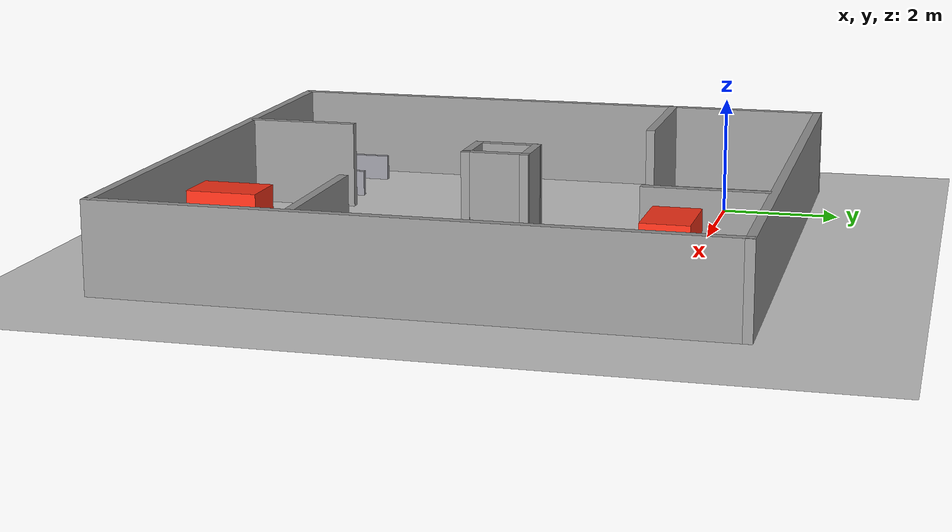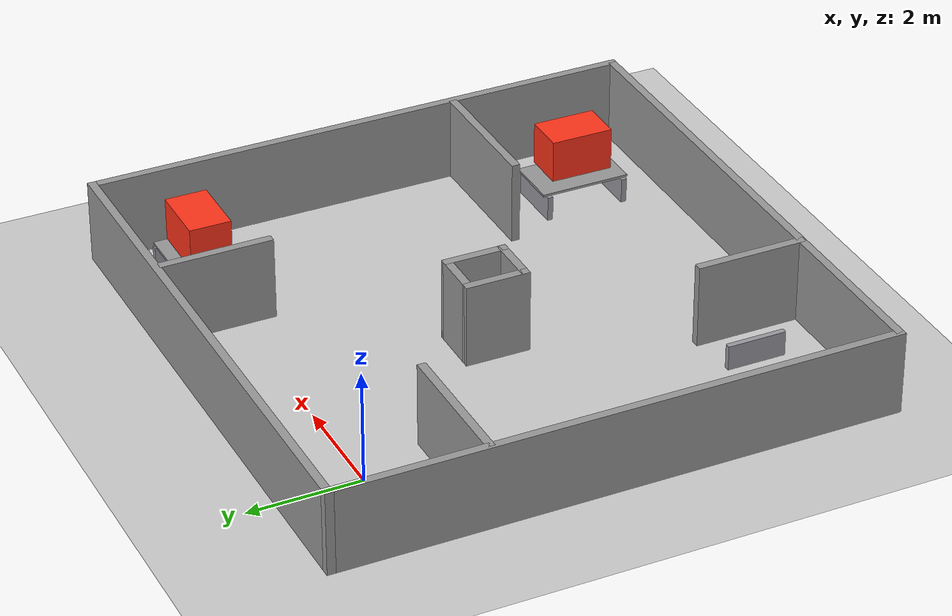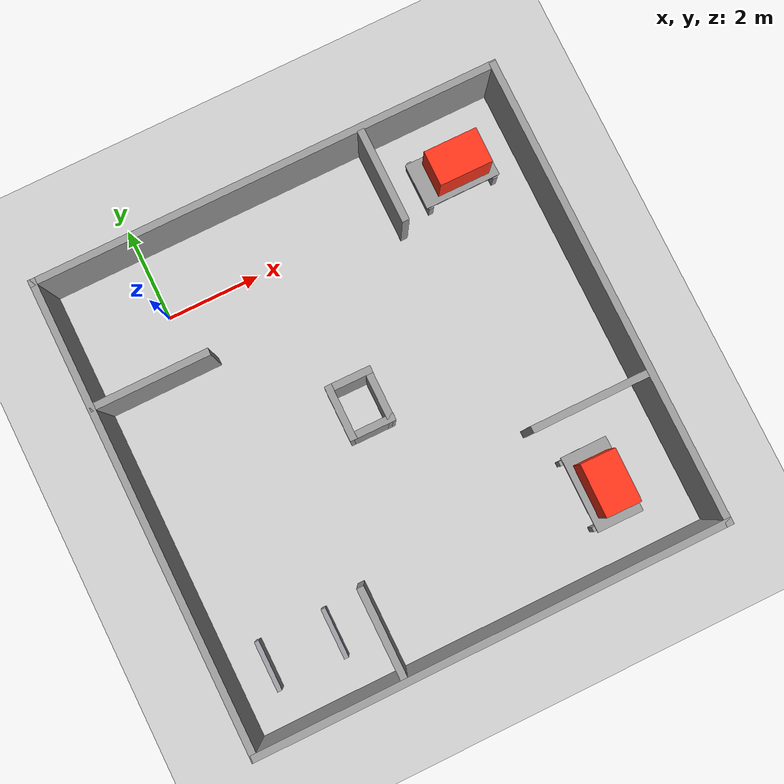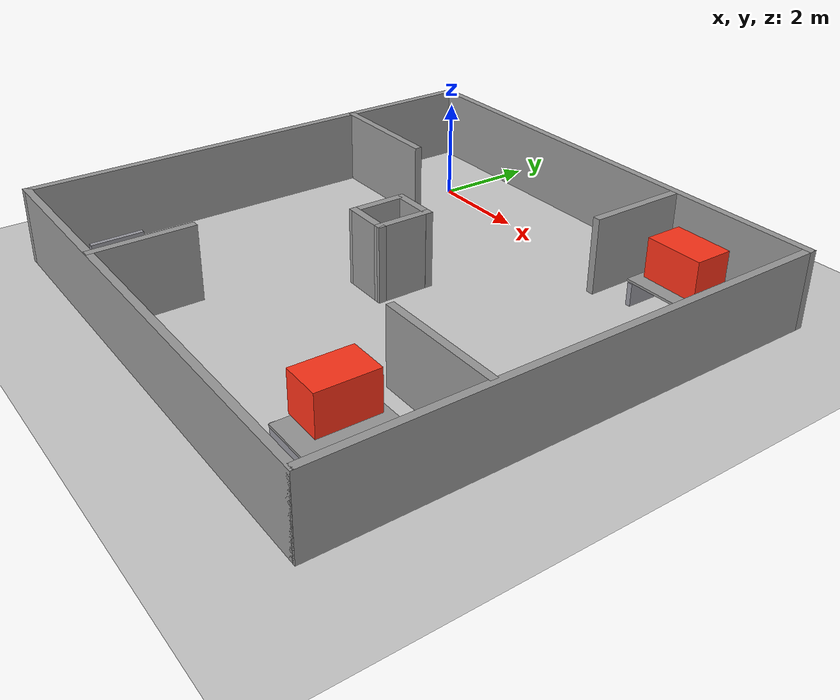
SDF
<sdf version="1.7">
 <world name="default">
  <light name="sun" type="directional">
   <pose>0 0 10 0 -0 0</pose>
   <diffuse>0.8 0.8 0.8 1</diffuse>
   <specular>0.2 0.2 0.2 1</specular>
   <attenuation>
    <range>1000</range>
    <constant>0.9</constant>
    <linear>0.01</linear>
    <quadratic>0.001</quadratic>
   </attenuation>
   <direction>-0.5 0.1 -0.9</direction>
   <spot><inner_angle>0</inner_angle><outer_angle>0</outer_angle><falloff>0</falloff></spot>
  </light>
  <model name="ground_plane">
   <static>1</static>
   <link name="link">
    <collision name="collision">
     <geometry><plane><normal>0 0 1</normal><size>100 100</size></plane></geometry>
     <surface>
      <contact><collide_bitmask>65535</collide_bitmask></contact>
      <friction><ode><mu>100</mu><mu2>50</mu2></ode></friction>
     </surface>
    </collision>
    <visual name="visual">
     <cast_shadows>0</cast_shadows>
     <geometry><plane><normal>0 0 1</normal><size>100 100</size></plane></geometry>
     <material>
      <script><uri>file://media/materials/scripts/gazebo.material</uri><name>Gazebo/Grey</name></script>
     </material>
    </visual>
   </link>
  </model>
  <gravity>0 0 -9.8</gravity>
  <magnetic_field>6e-06 2.3e-05 -4.2e-05</magnetic_field>
  <atmosphere type="adiabatic"/>
  <physics type="ode">
   <max_step_size>0.001</max_step_size>
   <real_time_factor>1</real_time_factor>
   <real_time_update_rate>1000</real_time_update_rate>
  </physics>
  <scene><ambient>0.4 0.4 0.4 1</ambient><background>0.7 0.7 0.7 1</background><shadows>1</shadows></scene>
  <spherical_coordinates>
   <surface_model>EARTH_WGS84</surface_model>
   <latitude_deg>0</latitude_deg>
   <longitude_deg>0</longitude_deg>
   <elevation>0</elevation>
   <heading_deg>0</heading_deg>
  </spherical_coordinates>
  <model name="small_factory">
   <static>1</static>
   <pose>2.99897 -3.51071 0 0 -0 0</pose>
   <link name="Wall_10">
    <collision name="Wall_10_Collision">
     <geometry><box><size>0.959845 0.15 1.5</size></box></geometry>
     <pose>0 0 0.75 0 -0 0</pose>
     <laser_retro>100</laser_retro>
    </collision>
    <visual name="Wall_10_Visual">
     <pose>0 0 0.75 0 -0 0</pose>
     <geometry><box><size>0.959845 0.15 1.5</size></box></geometry>
     <material>
      <script><uri>file://media/materials/scripts/gazebo.material</uri><name>Gazebo/Grey</name></script>
      <ambient>1 1 1 1</ambient>
     </material>
     <meta><layer>0</layer></meta>
    </visual>
    <pose>-0.30531 0.605072 0 0 -0 3.13386</pose>
   </link>
   <link name="Wall_11">
    <collision name="Wall_11_Collision">
     <geometry><box><size>1.15678 0.15 1.5</size></box></geometry>
     <pose>0 0 0.75 0 -0 0</pose>
     <laser_retro>100</laser_retro>
    </collision>
    <visual name="Wall_11_Visual">
     <pose>0 0 0.75 0 -0 0</pose>
     <geometry><box><size>1.15678 0.15 1.5</size></box></geometry>
     <material>
      <script><uri>file://media/materials/scripts/gazebo.material</uri><name>Gazebo/Grey</name></script>
      <ambient>1 1 1 1</ambient>
     </material>
     <meta><layer>0</layer></meta>
    </visual>
    <pose>-0.716705 0.104819 0 0 -0 -1.57509</pose>
   </link>
   <link name="Wall_12">
    <collision name="Wall_12_Collision">
     <geometry><box><size>0.959845 0.15 1.5</size></box></geometry>
     <pose>0 0 0.75 0 -0 0</pose>
     <laser_retro>100</laser_retro>
    </collision>
    <visual name="Wall_12_Visual">
     <pose>0 0 0.75 0 -0 0</pose>
     <geometry><box><size>0.959845 0.15 1.5</size></box></geometry>
     <material>
      <script><uri>file://media/materials/scripts/gazebo.material</uri><name>Gazebo/Grey</name></script>
      <ambient>1 1 1 1</ambient>
     </material>
     <meta><layer>0</layer></meta>
    </visual>
    <pose>-0.309633 -0.401695 0 0 -0 -0.007731</pose>
   </link>
   <link name="Wall_13">
    <collision name="Wall_13_Collision">
     <geometry><box><size>1.15678 0.15 1.5</size></box></geometry>
     <pose>0 0 0.75 0 -0 0</pose>
     <laser_retro>100</laser_retro>
    </collision>
    <visual name="Wall_13_Visual">
     <pose>0 0 0.75 0 -0 0</pose>
     <geometry><box><size>1.15678 0.15 1.5</size></box></geometry>
     <material>
      <script><uri>file://media/materials/scripts/gazebo.material</uri><name>Gazebo/Grey</name></script>
      <ambient>1 1 1 1</ambient>
     </material>
     <meta><layer>0</layer></meta>
    </visual>
    <pose>0.093115 0.098558 0 0 -0 1.5665</pose>
   </link>
   <link name="Wall_15">
    <collision name="Wall_15_Collision">
     <geometry><box><size>2.5 0.15 1.5</size></box></geometry>
     <pose>0 0 0.75 0 -0 0</pose>
     <laser_retro>100</laser_retro>
    </collision>
    <visual name="Wall_15_Visual">
     <pose>0 0 0.75 0 -0 0</pose>
     <geometry><box><size>2.5 0.15 1.5</size></box></geometry>
     <material>
      <script><uri>file://media/materials/scripts/gazebo.material</uri><name>Gazebo/Grey</name></script>
      <ambient>1 1 1 1</ambient>
     </material>
     <meta><layer>0</layer></meta>
    </visual>
    <pose>3.641 -1.7755 0 0 -0 3.14159</pose>
   </link>
   <link name="Wall_17">
    <collision name="Wall_17_Collision">
     <geometry><box><size>2.5 0.15 1.5</size></box></geometry>
     <pose>0 0 0.75 0 -0 0</pose>
     <laser_retro>100</laser_retro>
    </collision>
    <visual name="Wall_17_Visual">
     <pose>0 0 0.75 0 -0 0</pose>
     <geometry><box><size>2.5 0.15 1.5</size></box></geometry>
     <material>
      <script><uri>file://media/materials/scripts/gazebo.material</uri><name>Gazebo/Grey</name></script>
      <ambient>1 1 1 1</ambient>
     </material>
     <meta><layer>0</layer></meta>
    </visual>
    <pose>-3.7 2.2555 0 0 -0 0</pose>
   </link>
   <link name="Wall_19">
    <collision name="Wall_19_Collision">
     <geometry><box><size>2 0.15 1.5</size></box></geometry>
     <pose>0 0 0.75 0 -0 0</pose>
     <laser_retro>100</laser_retro>
    </collision>
    <visual name="Wall_19_Visual">
     <pose>0 0 0.75 0 -0 0</pose>
     <geometry><box><size>2 0.15 1.5</size></box></geometry>
     <material>
      <script><uri>file://media/materials/scripts/gazebo.material</uri><name>Gazebo/Grey</name></script>
      <ambient>1 1 1 1</ambient>
     </material>
     <meta><layer>0</layer></meta>
    </visual>
    <pose>-1.8178 -3.9919 0 0 -0 1.5708</pose>
   </link>
   <link name="Wall_21">
    <collision name="Wall_21_Collision">
     <geometry><box><size>2 0.15 1.5</size></box></geometry>
     <pose>0 0 0.75 0 -0 0</pose>
     <laser_retro>100</laser_retro>
    </collision>
    <visual name="Wall_21_Visual">
     <pose>0 0 0.75 0 -0 0</pose>
     <geometry><box><size>2 0.15 1.5</size></box></geometry>
     <material>
      <script><uri>file://media/materials/scripts/gazebo.material</uri><name>Gazebo/Grey</name></script>
      <ambient>1 1 1 1</ambient>
     </material>
     <meta><layer>0</layer></meta>
    </visual>
    <pose>2.025 3.8845 0 0 -0 -1.5708</pose>
   </link>
   <link name="Wall_3">
    <collision name="Wall_3_Collision">
     <geometry><box><size>10.0232 0.15 1.5</size></box></geometry>
     <pose>0 0 0.75 0 -0 0</pose>
     <laser_retro>100</laser_retro>
    </collision>
    <visual name="Wall_3_Visual">
     <pose>0 0 0.75 0 -0 0</pose>
     <geometry><box><size>10.0232 0.15 1.5</size></box></geometry>
     <material>
      <script><uri>file://media/materials/scripts/gazebo.material</uri><name>Gazebo/Grey</name></script>
      <ambient>1 1 1 1</ambient>
     </material>
     <meta><layer>0</layer></meta>
    </visual>
    <pose>-4.925 0 0 0 -0 -1.5708</pose>
   </link>
   <link name="Wall_4">
    <collision name="Wall_4_Collision">
     <geometry><box><size>10 0.15 1.5</size></box></geometry>
     <pose>0 0 0.75 0 -0 0</pose>
     <laser_retro>100</laser_retro>
    </collision>
    <visual name="Wall_4_Visual">
     <pose>0 0 0.75 0 -0 0</pose>
     <geometry><box><size>10 0.15 1.5</size></box></geometry>
     <material>
      <script><uri>file://media/materials/scripts/gazebo.material</uri><name>Gazebo/Grey</name></script>
      <ambient>1 1 1 1</ambient>
     </material>
     <meta><layer>0</layer></meta>
    </visual>
    <pose>0 -4.9365 0 0 -0 0</pose>
   </link>
   <link name="Wall_6">
    <collision name="Wall_6_Collision">
     <geometry><box><size>10 0.15 1.5</size></box></geometry>
     <pose>0 0 0.75 0 -0 0</pose>
     <laser_retro>100</laser_retro>
    </collision>
    <visual name="Wall_6_Visual">
     <pose>0 0 0.75 0 -0 0</pose>
     <geometry><box><size>10 0.15 1.5</size></box></geometry>
     <material>
      <script><uri>file://media/materials/scripts/gazebo.material</uri><name>Gazebo/Grey</name></script>
      <ambient>1 1 1 1</ambient>
     </material>
     <meta><layer>0</layer></meta>
    </visual>
    <pose>0 4.9365 0 0 -0 0</pose>
   </link>
   <link name="Wall_8">
    <collision name="Wall_8_Collision">
     <geometry><box><size>10 0.15 1.5</size></box></geometry>
     <pose>0 0 0.75 0 -0 0</pose>
     <laser_retro>100</laser_retro>
    </collision>
    <visual name="Wall_8_Visual">
     <pose>0 0 0.75 0 -0 0</pose>
     <geometry><box><size>10 0.15 1.5</size></box></geometry>
     <material>
      <script><uri>file://media/materials/scripts/gazebo.material</uri><name>Gazebo/Grey</name></script>
      <ambient>1 1 1 1</ambient>
     </material>
     <meta><layer>0</layer></meta>
    </visual>
    <pose>4.925 -0.0115 0 0 -0 1.5708</pose>
   </link>
   <static>1</static>
  </model>
  <model name="payload_lift_box">
   <link name="link">
    <inertial>
     <mass>5</mass>
     <inertia><ixx>0.417503</ixx><ixy>0</ixy><ixz>0</ixz><iyy>1.11336</iyy><iyz>0</iyz><izz>1.52919</izz></inertia>
    </inertial>
    <visual name="visual">
     <geometry><box><size>1.63403 1 0.044809</size></box></geometry>
     <material>
      <script><name>Gazebo/Grey</name><uri>file://media/materials/scripts/gazebo.material</uri></script>
      <shader type="pixel"><normal_map>__default__</normal_map></shader>
     </material>
    </visual>
    <collision name="collision">
     <geometry><box><size>1.63403 1 0.044809</size></box></geometry>
     <surface>
      <friction>
       <ode><mu>1</mu><mu2>1</mu2><fdir1>0 0 0</fdir1><slip1>0</slip1><slip2>0</slip2></ode>
       <torsional>
        <coefficient>1</coefficient>
        <patch_radius>0</patch_radius>
        <surface_radius>0</surface_radius>
        <use_patch_radius>1</use_patch_radius>
        <ode><slip>0</slip></ode>
       </torsional>
      </friction>
      <bounce><restitution_coefficient>0</restitution_coefficient><threshold>1e+06</threshold></bounce>
      <contact>
       <collide_without_contact>0</collide_without_contact>
       <collide_without_contact_bitmask>1</collide_without_contact_bitmask>
       <collide_bitmask>1</collide_bitmask>
       <ode>
        <soft_cfm>0</soft_cfm>
        <soft_erp>0.2</soft_erp>
        <kp>1e+13</kp>
        <kd>1</kd>
        <max_vel>0.01</max_vel>
        <min_depth>0</min_depth>
       </ode>
       <bullet>
        <split_impulse>1</split_impulse>
        <split_impulse_penetration_threshold>-0.01</split_impulse_penetration_threshold>
        <soft_cfm>0</soft_cfm>
        <soft_erp>0.2</soft_erp>
        <kp>1e+13</kp>
        <kd>1</kd>
       </bullet>
      </contact>
     </surface>
    </collision>
   </link>
   <static>0</static>
   <pose>6.46781 0.13348 0.472387 -1.4e-05 -2e-06 0.000832</pose>
  </model>
  <model name="payload_box">
   <link name="link">
    <inertial>
     <mass>15</mass>
     <inertia><ixx>2.32332</ixx><ixy>0</ixy><ixz>0</ixz><iyy>1.43272</iyy><iyz>0</iyz><izz>2.2858</izz></inertia>
    </inertial>
    <visual name="visual">
     <geometry><box><size>0.747047 1.12719 0.766877</size></box></geometry>
     <material>
      <script><name>Gazebo/Grey</name><uri>file://media/materials/scripts/gazebo.material</uri></script>
      <shader type="pixel"><normal_map>__default__</normal_map></shader>
      <ambient>1 0.2 0.1 0</ambient>
      <diffuse>0.7 0.7 0.7 1</diffuse>
      <specular>0.01 0.01 0.01 1</specular>
      <emissive>0 0 0 1</emissive>
     </material>
    </visual>
    <collision name="collision">
     <geometry><box><size>0.747047 1.12719 0.766877</size></box></geometry>
     <surface>
      <friction>
       <ode><mu>1</mu><mu2>1</mu2><fdir1>0 0 0</fdir1><slip1>0</slip1><slip2>0</slip2></ode>
       <torsional>
        <coefficient>1</coefficient>
        <patch_radius>0</patch_radius>
        <surface_radius>0</surface_radius>
        <use_patch_radius>1</use_patch_radius>
        <ode><slip>0</slip></ode>
       </torsional>
      </friction>
      <bounce><restitution_coefficient>0</restitution_coefficient><threshold>1e+06</threshold></bounce>
      <contact>
       <collide_without_contact>0</collide_without_contact>
       <collide_without_contact_bitmask>1</collide_without_contact_bitmask>
       <collide_bitmask>1</collide_bitmask>
       <ode>
        <soft_cfm>0</soft_cfm>
        <soft_erp>0.2</soft_erp>
        <kp>1e+13</kp>
        <kd>1</kd>
        <max_vel>0.01</max_vel>
        <min_depth>0</min_depth>
       </ode>
       <bullet>
        <split_impulse>1</split_impulse>
        <split_impulse_penetration_threshold>-0.01</split_impulse_penetration_threshold>
        <soft_cfm>0</soft_cfm>
        <soft_erp>0.2</soft_erp>
        <kp>1e+13</kp>
        <kd>1</kd>
       </bullet>
      </contact>
     </surface>
    </collision>
   </link>
   <static>0</static>
   <pose>6.51241 0.092349 1.02221 0 3e-06 1.56396</pose>
  </model>
  <model name="payload_lift_box_clone">
   <link name="link">
    <inertial>
     <mass>5</mass>
     <inertia><ixx>0.417503</ixx><ixy>0</ixy><ixz>0</ixz><iyy>1.11336</iyy><iyz>0</iyz><izz>1.52919</izz></inertia>
    </inertial>
    <visual name="visual">
     <geometry><box><size>1.63403 1 0.044809</size></box></geometry>
     <material>
      <script><name>Gazebo/Grey</name><uri>file://media/materials/scripts/gazebo.material</uri></script>
      <shader type="pixel"><normal_map>__default__</normal_map></shader>
     </material>
    </visual>
    <collision name="collision">
     <geometry><box><size>1.63403 1 0.044809</size></box></geometry>
     <surface>
      <friction>
       <ode><mu>1</mu><mu2>1</mu2><fdir1>0 0 0</fdir1><slip1>0</slip1><slip2>0</slip2></ode>
       <torsional>
        <coefficient>1</coefficient>
        <patch_radius>0</patch_radius>
        <surface_radius>0</surface_radius>
        <use_patch_radius>1</use_patch_radius>
        <ode><slip>0</slip></ode>
       </torsional>
      </friction>
      <bounce><restitution_coefficient>0</restitution_coefficient><threshold>1e+06</threshold></bounce>
      <contact>
       <collide_without_contact>0</collide_without_contact>
       <collide_without_contact_bitmask>1</collide_without_contact_bitmask>
       <collide_bitmask>1</collide_bitmask>
       <ode>
        <soft_cfm>0</soft_cfm>
        <soft_erp>0.2</soft_erp>
        <kp>1e+13</kp>
        <kd>1</kd>
        <max_vel>0.01</max_vel>
        <min_depth>0</min_depth>
       </ode>
       <bullet>
        <split_impulse>1</split_impulse>
        <split_impulse_penetration_threshold>-0.01</split_impulse_penetration_threshold>
        <soft_cfm>0</soft_cfm>
        <soft_erp>0.2</soft_erp>
        <kp>1e+13</kp>
        <kd>1</kd>
       </bullet>
      </contact>
     </surface>
    </collision>
   </link>
   <static>0</static>
   <pose>6.29854 -6.84559 0.472384 0 -0 1.56959</pose>
  </model>
  <model name="payload_box_0">
   <link name="link">
    <inertial>
     <mass>15</mass>
     <inertia><ixx>2.32332</ixx><ixy>0</ixy><ixz>0</ixz><iyy>1.43272</iyy><iyz>0</iyz><izz>2.2858</izz></inertia>
    </inertial>
    <visual name="visual">
     <geometry><box><size>0.747047 1.12719 0.766877</size></box></geometry>
     <material>
      <script><name>Gazebo/Grey</name><uri>file://media/materials/scripts/gazebo.material</uri></script>
      <shader type="pixel"><normal_map>__default__</normal_map></shader>
      <ambient>1 0.2 0.1 0</ambient>
      <diffuse>0.7 0.7 0.7 1</diffuse>
      <specular>0.01 0.01 0.01 1</specular>
      <emissive>0 0 0 1</emissive>
     </material>
    </visual>
    <collision name="collision">
     <geometry><box><size>0.747047 1.12719 0.766877</size></box></geometry>
     <surface>
      <friction>
       <ode><mu>1</mu><mu2>1</mu2><fdir1>0 0 0</fdir1><slip1>0</slip1><slip2>0</slip2></ode>
       <torsional>
        <coefficient>1</coefficient>
        <patch_radius>0</patch_radius>
        <surface_radius>0</surface_radius>
        <use_patch_radius>1</use_patch_radius>
        <ode><slip>0</slip></ode>
       </torsional>
      </friction>
      <bounce><restitution_coefficient>0</restitution_coefficient><threshold>1e+06</threshold></bounce>
      <contact>
       <collide_without_contact>0</collide_without_contact>
       <collide_without_contact_bitmask>1</collide_without_contact_bitmask>
       <collide_bitmask>1</collide_bitmask>
       <ode>
        <soft_cfm>0</soft_cfm>
        <soft_erp>0.2</soft_erp>
        <kp>1e+13</kp>
        <kd>1</kd>
        <max_vel>0.01</max_vel>
        <min_depth>0</min_depth>
       </ode>
       <bullet>
        <split_impulse>1</split_impulse>
        <split_impulse_penetration_threshold>-0.01</split_impulse_penetration_threshold>
        <soft_cfm>0</soft_cfm>
        <soft_erp>0.2</soft_erp>
        <kp>1e+13</kp>
        <kd>1</kd>
       </bullet>
      </contact>
     </surface>
    </collision>
   </link>
   <static>0</static>
   <pose>6.29331 -6.83496 1.02222 6e-06 1.1e-05 -0.009745</pose>
  </model>
  <model name="stand">
   <static>0</static>
   <link name="walls_link">
    <collision name="left_wall_col">
     <pose>0.72 0 0.225 0 -0 0</pose>
     <geometry><box><size>0.1 1.06 0.45</size></box></geometry>
     <surface><friction><ode><mu>1000</mu><mu2>1000</mu2></ode></friction></surface>
     <laser_retro>100</laser_retro>
    </collision>
    <visual name="left_wall_vis">
     <pose>0.72 0 0.225 0 -0 0</pose>
     <geometry><box><size>0.1 1.06 0.45</size></box></geometry>
     <material>
      <ambient>0.6 0.6 0.63 1</ambient>
      <diffuse>0.6 0.6 0.63 1</diffuse>
      <specular>0.3 0.3 0.3 1</specular>
     </material>
    </visual>
    <collision name="right_wall_col">
     <pose>-0.72 0 0.225 0 -0 0</pose>
     <geometry><box><size>0.1 1.06 0.45</size></box></geometry>
     <surface><friction><ode><mu>1000</mu><mu2>1000</mu2></ode></friction></surface>
     <laser_retro>100</laser_retro>
    </collision>
    <visual name="right_wall_vis">
     <pose>-0.72 0 0.225 0 -0 0</pose>
     <geometry><box><size>0.1 1.06 0.45</size></box></geometry>
     <material>
      <ambient>0.6 0.6 0.63 1</ambient>
      <diffuse>0.6 0.6 0.63 1</diffuse>
      <specular>0.3 0.3 0.3 1</specular>
     </material>
    </visual>
    <inertial>
     <mass>5000</mass>
     <inertia><ixx>5000</ixx><iyy>5000</iyy><izz>5000</izz><ixy>0</ixy><ixz>0</ixz><iyz>0</iyz></inertia>
    </inertial>
   </link>
   <pose>6.46811 0.136699 -0 0 -0 0</pose>
  </model>
  <model name="stand_clone">
   <static>0</static>
   <link name="walls_link">
    <collision name="left_wall_col">
     <pose>0.72 0 0.225 0 -0 0</pose>
     <geometry><box><size>0.1 1.06 0.45</size></box></geometry>
     <surface><friction><ode><mu>1000</mu><mu2>1000</mu2></ode></friction></surface>
     <laser_retro>100</laser_retro>
    </collision>
    <visual name="left_wall_vis">
     <pose>0.72 0 0.225 0 -0 0</pose>
     <geometry><box><size>0.1 1.06 0.45</size></box></geometry>
     <material>
      <ambient>0.6 0.6 0.63 1</ambient>
      <diffuse>0.6 0.6 0.63 1</diffuse>
      <specular>0.3 0.3 0.3 1</specular>
     </material>
    </visual>
    <collision name="right_wall_col">
     <pose>-0.72 0 0.225 0 -0 0</pose>
     <geometry><box><size>0.1 1.06 0.45</size></box></geometry>
     <surface><friction><ode><mu>1000</mu><mu2>1000</mu2></ode></friction></surface>
     <laser_retro>100</laser_retro>
    </collision>
    <visual name="right_wall_vis">
     <pose>-0.72 0 0.225 0 -0 0</pose>
     <geometry><box><size>0.1 1.06 0.45</size></box></geometry>
     <material>
      <ambient>0.6 0.6 0.63 1</ambient>
      <diffuse>0.6 0.6 0.63 1</diffuse>
      <specular>0.3 0.3 0.3 1</specular>
     </material>
    </visual>
    <inertial>
     <mass>5000</mass>
     <inertia><ixx>5000</ixx><iyy>5000</iyy><izz>5000</izz><ixy>0</ixy><ixz>0</ixz><iyz>0</iyz></inertia>
    </inertial>
   </link>
   <pose>6.26482 -6.84873 -2e-05 0 -0 1.57</pose>
  </model>
  <model name="stand_clone_0">
   <static>0</static>
   <link name="walls_link">
    <collision name="left_wall_col">
     <pose>0.72 0 0.225 0 -0 0</pose>
     <geometry><box><size>0.1 1.06 0.45</size></box></geometry>
     <surface><friction><ode><mu>1000</mu><mu2>1000</mu2></ode></friction></surface>
     <laser_retro>100</laser_retro>
    </collision>
    <visual name="left_wall_vis">
     <pose>0.72 0 0.225 0 -0 0</pose>
     <geometry><box><size>0.1 1.06 0.45</size></box></geometry>
     <material>
      <ambient>0.6 0.6 0.63 1</ambient>
      <diffuse>0.6 0.6 0.63 1</diffuse>
      <specular>0.3 0.3 0.3 1</specular>
     </material>
    </visual>
    <collision name="right_wall_col">
     <pose>-0.72 0 0.225 0 -0 0</pose>
     <geometry><box><size>0.1 1.06 0.45</size></box></geometry>
     <surface><friction><ode><mu>1000</mu><mu2>1000</mu2></ode></friction></surface>
     <laser_retro>100</laser_retro>
    </collision>
    <visual name="right_wall_vis">
     <pose>-0.72 0 0.225 0 -0 0</pose>
     <geometry><box><size>0.1 1.06 0.45</size></box></geometry>
     <material>
      <ambient>0.6 0.6 0.63 1</ambient>
      <diffuse>0.6 0.6 0.63 1</diffuse>
      <specular>0.3 0.3 0.3 1</specular>
     </material>
    </visual>
    <inertial>
     <mass>5000</mass>
     <inertia><ixx>5000</ixx><iyy>5000</iyy><izz>5000</izz><ixy>0</ixy><ixz>0</ixz><iyz>0</iyz></inertia>
    </inertial>
   </link>
   <pose>-0.416186 -7.14673 -0 0 -0 0</pose>
  </model>
 </world>
</sdf>
